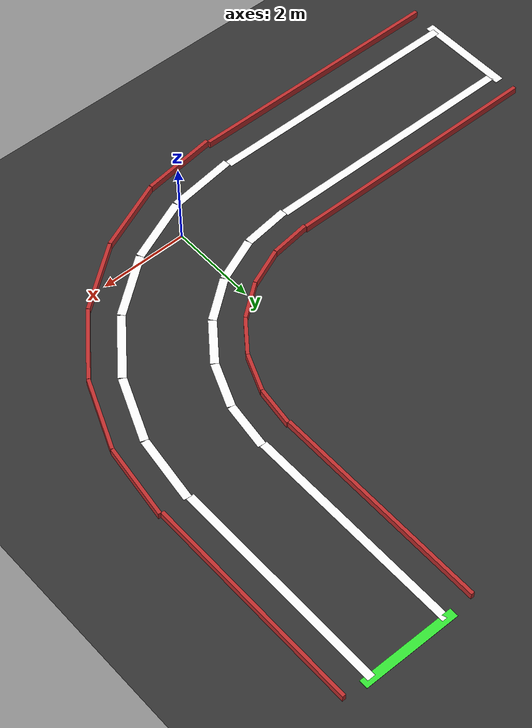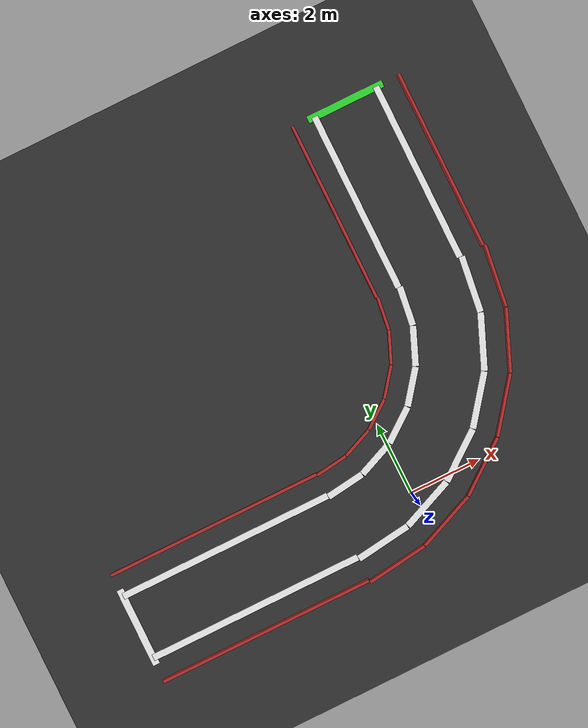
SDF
<?xml version="1.0" ?>
<sdf version='1.7'>
  <world name='lane_curve_short'>
    <light name='sun' type='directional'>
      <cast_shadows>1</cast_shadows>
      <pose>0 0 10 0 -0 0</pose>
      <diffuse>0.8 0.8 0.8 1</diffuse>
      <specular>0.2 0.2 0.2 1</specular>
      <attenuation>
        <range>1000</range>
        <constant>0.9</constant>
        <linear>0.01</linear>
        <quadratic>0.001</quadratic>
      </attenuation>
      <direction>-0.35 0.1 -0.93</direction>
    </light>

    <gravity>0 0 -9.8</gravity>
    <magnetic_field>6e-06 2.3e-05 -4.2e-05</magnetic_field>
    <atmosphere type='adiabatic'/>
    <physics type='ode'>
      <max_step_size>0.001</max_step_size>
      <real_time_factor>1</real_time_factor>
      <real_time_update_rate>1000</real_time_update_rate>
    </physics>

    <scene>
      <ambient>0.45 0.45 0.45 1</ambient>
      <background>0.82 0.86 0.9 1</background>
      <shadows>1</shadows>
    </scene>

    <audio>
      <device>default</device>
    </audio>

    <wind/>

    <spherical_coordinates>
      <surface_model>EARTH_WGS84</surface_model>
      <latitude_deg>40.8069</latitude_deg>
      <longitude_deg>29.3579</longitude_deg>
      <elevation>0</elevation>
      <heading_deg>0</heading_deg>
    </spherical_coordinates>

    <model name='ground_plane'>
      <static>1</static>
      <link name='link'>
        <collision name='collision'>
          <geometry>
            <plane>
              <normal>0 0 1</normal>
              <size>80 80</size>
            </plane>
          </geometry>
        </collision>
        <visual name='visual'>
          <cast_shadows>0</cast_shadows>
          <geometry>
            <plane>
              <normal>0 0 1</normal>
              <size>80 80</size>
            </plane>
          </geometry>
          <material>
            <ambient>0.18 0.18 0.18 1</ambient>
            <diffuse>0.2 0.2 0.2 1</diffuse>
            <specular>0.02 0.02 0.02 1</specular>
          </material>
        </visual>
      </link>
    </model>

    <model name='lane_markings_curve'>
      <static>1</static>
      <link name='lane_lines'>
        <visual name='left_straight_in'>
          <pose>-5.0 0.9 0.006 0 0 0.0</pose>
          <geometry>
            <box>
              <size>6.0 0.18 0.01</size>
            </box>
          </geometry>
          <material>
            <ambient>0.98 0.98 0.98 1</ambient>
            <diffuse>0.98 0.98 0.98 1</diffuse>
          </material>
        </visual>

        <visual name='right_straight_in'>
          <pose>-5.0 -0.9 0.006 0 0 0.0</pose>
          <geometry>
            <box>
              <size>6.0 0.18 0.01</size>
            </box>
          </geometry>
          <material>
            <ambient>0.98 0.98 0.98 1</ambient>
            <diffuse>0.98 0.98 0.98 1</diffuse>
          </material>
        </visual>

        <visual name='left_arc_1'>
          <pose>-1.465 0.935 0.006 0 0 0.131</pose>
          <geometry><box><size>1.073 0.18 0.01</size></box></geometry>
          <material><ambient>0.98 0.98 0.98 1</ambient><diffuse>0.98 0.98 0.98 1</diffuse></material>
        </visual>
        <visual name='left_arc_2'>
          <pose>-0.431 1.212 0.006 0 0 0.393</pose>
          <geometry><box><size>1.073 0.18 0.01</size></box></geometry>
          <material><ambient>0.98 0.98 0.98 1</ambient><diffuse>0.98 0.98 0.98 1</diffuse></material>
        </visual>
        <visual name='left_arc_3'>
          <pose>0.496 1.747 0.006 0 0 0.654</pose>
          <geometry><box><size>1.073 0.18 0.01</size></box></geometry>
          <material><ambient>0.98 0.98 0.98 1</ambient><diffuse>0.98 0.98 0.98 1</diffuse></material>
        </visual>
        <visual name='left_arc_4'>
          <pose>1.253 2.504 0.006 0 0 0.916</pose>
          <geometry><box><size>1.073 0.18 0.01</size></box></geometry>
          <material><ambient>0.98 0.98 0.98 1</ambient><diffuse>0.98 0.98 0.98 1</diffuse></material>
        </visual>
        <visual name='left_arc_5'>
          <pose>1.788 3.431 0.006 0 0 1.178</pose>
          <geometry><box><size>1.073 0.18 0.01</size></box></geometry>
          <material><ambient>0.98 0.98 0.98 1</ambient><diffuse>0.98 0.98 0.98 1</diffuse></material>
        </visual>
        <visual name='left_arc_6'>
          <pose>2.065 4.465 0.006 0 0 1.440</pose>
          <geometry><box><size>1.073 0.18 0.01</size></box></geometry>
          <material><ambient>0.98 0.98 0.98 1</ambient><diffuse>0.98 0.98 0.98 1</diffuse></material>
        </visual>

        <visual name='right_arc_1'>
          <pose>-1.230 -0.850 0.006 0 0 0.131</pose>
          <geometry><box><size>1.545 0.18 0.01</size></box></geometry>
          <material><ambient>0.98 0.98 0.98 1</ambient><diffuse>0.98 0.98 0.98 1</diffuse></material>
        </visual>
        <visual name='right_arc_2'>
          <pose>0.258 -0.451 0.006 0 0 0.393</pose>
          <geometry><box><size>1.545 0.18 0.01</size></box></geometry>
          <material><ambient>0.98 0.98 0.98 1</ambient><diffuse>0.98 0.98 0.98 1</diffuse></material>
        </visual>
        <visual name='right_arc_3'>
          <pose>1.592 0.319 0.006 0 0 0.654</pose>
          <geometry><box><size>1.545 0.18 0.01</size></box></geometry>
          <material><ambient>0.98 0.98 0.98 1</ambient><diffuse>0.98 0.98 0.98 1</diffuse></material>
        </visual>
        <visual name='right_arc_4'>
          <pose>2.681 1.408 0.006 0 0 0.916</pose>
          <geometry><box><size>1.545 0.18 0.01</size></box></geometry>
          <material><ambient>0.98 0.98 0.98 1</ambient><diffuse>0.98 0.98 0.98 1</diffuse></material>
        </visual>
        <visual name='right_arc_5'>
          <pose>3.451 2.742 0.006 0 0 1.178</pose>
          <geometry><box><size>1.545 0.18 0.01</size></box></geometry>
          <material><ambient>0.98 0.98 0.98 1</ambient><diffuse>0.98 0.98 0.98 1</diffuse></material>
        </visual>
        <visual name='right_arc_6'>
          <pose>3.850 4.230 0.006 0 0 1.440</pose>
          <geometry><box><size>1.545 0.18 0.01</size></box></geometry>
          <material><ambient>0.98 0.98 0.98 1</ambient><diffuse>0.98 0.98 0.98 1</diffuse></material>
        </visual>

        <visual name='left_straight_out'>
          <pose>2.1 7.5 0.006 0 0 1.571</pose>
          <geometry>
            <box>
              <size>5.0 0.18 0.01</size>
            </box>
          </geometry>
          <material>
            <ambient>0.98 0.98 0.98 1</ambient>
            <diffuse>0.98 0.98 0.98 1</diffuse>
          </material>
        </visual>

        <visual name='right_straight_out'>
          <pose>3.9 7.5 0.006 0 0 1.571</pose>
          <geometry>
            <box>
              <size>5.0 0.18 0.01</size>
            </box>
          </geometry>
          <material>
            <ambient>0.98 0.98 0.98 1</ambient>
            <diffuse>0.98 0.98 0.98 1</diffuse>
          </material>
        </visual>

        <visual name='start_line'>
          <pose>-8.0 0.0 0.006 0 0 0.0</pose>
          <geometry>
            <box>
              <size>0.2 2.2 0.01</size>
            </box>
          </geometry>
          <material>
            <ambient>0.98 0.98 0.98 1</ambient>
            <diffuse>0.98 0.98 0.98 1</diffuse>
          </material>
        </visual>

        <visual name='finish_line'>
          <pose>3.0 10.0 0.006 0 0 1.571</pose>
          <geometry>
            <box>
              <size>0.2 2.2 0.01</size>
            </box>
          </geometry>
          <material>
            <ambient>0.2 0.9 0.2 1</ambient>
            <diffuse>0.2 0.9 0.2 1</diffuse>
          </material>
        </visual>
      </link>
    </model>

    <model name='lane_bounds_curve'>
      <static>1</static>
      <link name='bounds'>
        <collision name='left_bound_straight_in'>
          <pose>-5.0 1.55 0.08 0 0 0.0</pose>
          <geometry><box><size>6.0 0.08 0.16</size></box></geometry>
        </collision>
        <visual name='left_bound_straight_in_v'>
          <pose>-5.0 1.55 0.08 0 0 0.0</pose>
          <geometry><box><size>6.0 0.08 0.16</size></box></geometry>
          <material><ambient>0.75 0.18 0.18 1</ambient><diffuse>0.75 0.18 0.18 1</diffuse></material>
        </visual>

        <collision name='right_bound_straight_in'>
          <pose>-5.0 -1.55 0.08 0 0 0.0</pose>
          <geometry><box><size>6.0 0.08 0.16</size></box></geometry>
        </collision>
        <visual name='right_bound_straight_in_v'>
          <pose>-5.0 -1.55 0.08 0 0 0.0</pose>
          <geometry><box><size>6.0 0.08 0.16</size></box></geometry>
          <material><ambient>0.75 0.18 0.18 1</ambient><diffuse>0.75 0.18 0.18 1</diffuse></material>
        </visual>

        <collision name='left_bound_arc_1'><pose>-1.550 1.580 0.08 0 0 0.131</pose><geometry><box><size>0.903 0.08 0.16</size></box></geometry></collision>
        <visual name='left_bound_arc_1_v'><pose>-1.550 1.580 0.08 0 0 0.131</pose><geometry><box><size>0.903 0.08 0.16</size></box></geometry><material><ambient>0.75 0.18 0.18 1</ambient><diffuse>0.75 0.18 0.18 1</diffuse></material></visual>
        <collision name='left_bound_arc_2'><pose>-0.680 1.813 0.08 0 0 0.393</pose><geometry><box><size>0.903 0.08 0.16</size></box></geometry></collision>
        <visual name='left_bound_arc_2_v'><pose>-0.680 1.813 0.08 0 0 0.393</pose><geometry><box><size>0.903 0.08 0.16</size></box></geometry><material><ambient>0.75 0.18 0.18 1</ambient><diffuse>0.75 0.18 0.18 1</diffuse></material></visual>
        <collision name='left_bound_arc_3'><pose>0.100 2.263 0.08 0 0 0.654</pose><geometry><box><size>0.903 0.08 0.16</size></box></geometry></collision>
        <visual name='left_bound_arc_3_v'><pose>0.100 2.263 0.08 0 0 0.654</pose><geometry><box><size>0.903 0.08 0.16</size></box></geometry><material><ambient>0.75 0.18 0.18 1</ambient><diffuse>0.75 0.18 0.18 1</diffuse></material></visual>
        <collision name='left_bound_arc_4'><pose>0.737 2.900 0.08 0 0 0.916</pose><geometry><box><size>0.903 0.08 0.16</size></box></geometry></collision>
        <visual name='left_bound_arc_4_v'><pose>0.737 2.900 0.08 0 0 0.916</pose><geometry><box><size>0.903 0.08 0.16</size></box></geometry><material><ambient>0.75 0.18 0.18 1</ambient><diffuse>0.75 0.18 0.18 1</diffuse></material></visual>
        <collision name='left_bound_arc_5'><pose>1.187 3.680 0.08 0 0 1.178</pose><geometry><box><size>0.903 0.08 0.16</size></box></geometry></collision>
        <visual name='left_bound_arc_5_v'><pose>1.187 3.680 0.08 0 0 1.178</pose><geometry><box><size>0.903 0.08 0.16</size></box></geometry><material><ambient>0.75 0.18 0.18 1</ambient><diffuse>0.75 0.18 0.18 1</diffuse></material></visual>
        <collision name='left_bound_arc_6'><pose>1.420 4.550 0.08 0 0 1.440</pose><geometry><box><size>0.903 0.08 0.16</size></box></geometry></collision>
        <visual name='left_bound_arc_6_v'><pose>1.420 4.550 0.08 0 0 1.440</pose><geometry><box><size>0.903 0.08 0.16</size></box></geometry><material><ambient>0.75 0.18 0.18 1</ambient><diffuse>0.75 0.18 0.18 1</diffuse></material></visual>

        <collision name='right_bound_arc_1'><pose>-1.145 -1.494 0.08 0 0 0.131</pose><geometry><box><size>1.715 0.08 0.16</size></box></geometry></collision>
        <visual name='right_bound_arc_1_v'><pose>-1.145 -1.494 0.08 0 0 0.131</pose><geometry><box><size>1.715 0.08 0.16</size></box></geometry><material><ambient>0.75 0.18 0.18 1</ambient><diffuse>0.75 0.18 0.18 1</diffuse></material></visual>
        <collision name='right_bound_arc_2'><pose>0.507 -1.051 0.08 0 0 0.393</pose><geometry><box><size>1.715 0.08 0.16</size></box></geometry></collision>
        <visual name='right_bound_arc_2_v'><pose>0.507 -1.051 0.08 0 0 0.393</pose><geometry><box><size>1.715 0.08 0.16</size></box></geometry><material><ambient>0.75 0.18 0.18 1</ambient><diffuse>0.75 0.18 0.18 1</diffuse></material></visual>
        <collision name='right_bound_arc_3'><pose>1.987 -0.196 0.08 0 0 0.654</pose><geometry><box><size>1.715 0.08 0.16</size></box></geometry></collision>
        <visual name='right_bound_arc_3_v'><pose>1.987 -0.196 0.08 0 0 0.654</pose><geometry><box><size>1.715 0.08 0.16</size></box></geometry><material><ambient>0.75 0.18 0.18 1</ambient><diffuse>0.75 0.18 0.18 1</diffuse></material></visual>
        <collision name='right_bound_arc_4'><pose>3.196 1.013 0.08 0 0 0.916</pose><geometry><box><size>1.715 0.08 0.16</size></box></geometry></collision>
        <visual name='right_bound_arc_4_v'><pose>3.196 1.013 0.08 0 0 0.916</pose><geometry><box><size>1.715 0.08 0.16</size></box></geometry><material><ambient>0.75 0.18 0.18 1</ambient><diffuse>0.75 0.18 0.18 1</diffuse></material></visual>
        <collision name='right_bound_arc_5'><pose>4.051 2.493 0.08 0 0 1.178</pose><geometry><box><size>1.715 0.08 0.16</size></box></geometry></collision>
        <visual name='right_bound_arc_5_v'><pose>4.051 2.493 0.08 0 0 1.178</pose><geometry><box><size>1.715 0.08 0.16</size></box></geometry><material><ambient>0.75 0.18 0.18 1</ambient><diffuse>0.75 0.18 0.18 1</diffuse></material></visual>
        <collision name='right_bound_arc_6'><pose>4.494 4.145 0.08 0 0 1.440</pose><geometry><box><size>1.715 0.08 0.16</size></box></geometry></collision>
        <visual name='right_bound_arc_6_v'><pose>4.494 4.145 0.08 0 0 1.440</pose><geometry><box><size>1.715 0.08 0.16</size></box></geometry><material><ambient>0.75 0.18 0.18 1</ambient><diffuse>0.75 0.18 0.18 1</diffuse></material></visual>

        <collision name='left_bound_straight_out'>
          <pose>1.45 7.5 0.08 0 0 1.571</pose>
          <geometry><box><size>5.0 0.08 0.16</size></box></geometry>
        </collision>
        <visual name='left_bound_straight_out_v'>
          <pose>1.45 7.5 0.08 0 0 1.571</pose>
          <geometry><box><size>5.0 0.08 0.16</size></box></geometry>
          <material><ambient>0.75 0.18 0.18 1</ambient><diffuse>0.75 0.18 0.18 1</diffuse></material>
        </visual>

        <collision name='right_bound_straight_out'>
          <pose>4.55 7.5 0.08 0 0 1.571</pose>
          <geometry><box><size>5.0 0.08 0.16</size></box></geometry>
        </collision>
        <visual name='right_bound_straight_out_v'>
          <pose>4.55 7.5 0.08 0 0 1.571</pose>
          <geometry><box><size>5.0 0.08 0.16</size></box></geometry>
          <material><ambient>0.75 0.18 0.18 1</ambient><diffuse>0.75 0.18 0.18 1</diffuse></material>
        </visual>
      </link>
    </model>

    <gui fullscreen='0'>
      <camera name='user_camera'>
        <pose>-2.0 -12.5 12.0 0 0.72 1.20</pose>
        <view_controller>orbit</view_controller>
        <projection_type>perspective</projection_type>
      </camera>
    </gui>
  </world>
</sdf>
